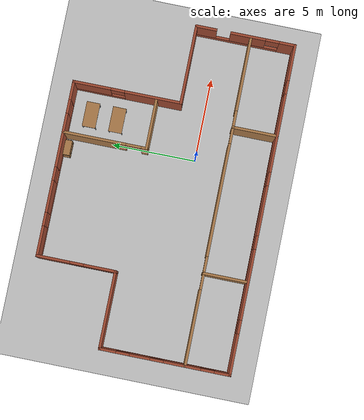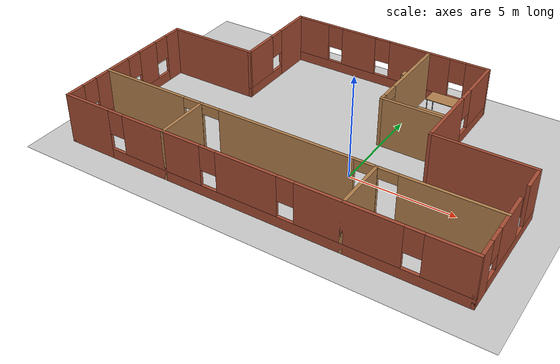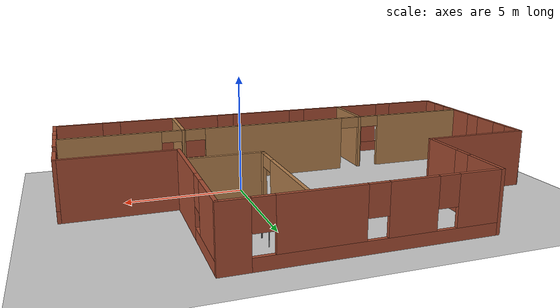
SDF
<sdf version="1.7">
 <world name="default">
  <model name="ground_plane">
   <static>1</static>
   <link name="link">
    <collision name="collision">
     <geometry><plane><normal>0 0 1</normal><size>100 100</size></plane></geometry>
     <surface>
      <contact><collide_bitmask>65535</collide_bitmask></contact>
      <friction><ode><mu>100</mu><mu2>50</mu2></ode></friction>
     </surface>
    </collision>
    <visual name="visual">
     <cast_shadows>0</cast_shadows>
     <geometry><plane><normal>0 0 1</normal><size>100 100</size></plane></geometry>
     <material>
      <script><uri>file://media/materials/scripts/gazebo.material</uri><name>Gazebo/Grey</name></script>
     </material>
    </visual>
   </link>
  </model>
  <model name="building">
   <pose>-2.195 1.715 0 0 -0 0</pose>
   <link name="Wall_10">
    <pose>-5.2249 3.79999 0 0 -0 -1.57084</pose>
    <visual name="Wall_10_Visual_0">
     <pose>-1.37612 0 1.25 0 -0 0</pose>
     <geometry><box><size>1.99776 0.15 2.5</size></box></geometry>
     <material>
      <script><uri>file://media/materials/scripts/gazebo.material</uri><name>Gazebo/Bricks</name></script>
      <ambient>1 1 1 1</ambient>
     </material>
     <meta><layer>0</layer></meta>
    </visual>
    <collision name="Wall_10_Collision_0">
     <geometry><box><size>1.99776 0.15 2.5</size></box></geometry>
     <pose>-1.37612 0 1.25 0 -0 0</pose>
    </collision>
    <visual name="Wall_10_Visual_1">
     <pose>0.998879 0 0.25 0 -0 0</pose>
     <geometry><box><size>2.75224 0.15 0.5</size></box></geometry>
     <material>
      <script><uri>file://media/materials/scripts/gazebo.material</uri><name>Gazebo/Bricks</name></script>
      <ambient>1 1 1 1</ambient>
     </material>
     <meta><layer>0</layer></meta>
    </visual>
    <collision name="Wall_10_Collision_1">
     <geometry><box><size>2.75224 0.15 0.5</size></box></geometry>
     <pose>0.998879 0 0.25 0 -0 0</pose>
    </collision>
    <visual name="Wall_10_Visual_2">
     <pose>1.39888 0 1.5 0 -0 0</pose>
     <geometry><box><size>1.95224 0.15 2</size></box></geometry>
     <material>
      <script><uri>file://media/materials/scripts/gazebo.material</uri><name>Gazebo/Bricks</name></script>
      <ambient>1 1 1 1</ambient>
     </material>
     <meta><layer>0</layer></meta>
    </visual>
    <collision name="Wall_10_Collision_2">
     <geometry><box><size>1.95224 0.15 2</size></box></geometry>
     <pose>1.39888 0 1.5 0 -0 0</pose>
    </collision>
    <visual name="Wall_10_Visual_3">
     <pose>0.022759 0 1.9 0 -0 0</pose>
     <geometry><box><size>0.8 0.15 1.2</size></box></geometry>
     <material>
      <script><uri>file://media/materials/scripts/gazebo.material</uri><name>Gazebo/Bricks</name></script>
      <ambient>1 1 1 1</ambient>
     </material>
     <meta><layer>0</layer></meta>
    </visual>
    <collision name="Wall_10_Collision_3">
     <geometry><box><size>0.8 0.15 1.2</size></box></geometry>
     <pose>0.022759 0 1.9 0 -0 0</pose>
    </collision>
   </link>
   <link name="Wall_11">
    <collision name="Wall_11_Collision">
     <geometry><box><size>4.65 0.15 2.5</size></box></geometry>
     <pose>0 0 1.25 0 -0 0</pose>
    </collision>
    <visual name="Wall_11_Visual">
     <pose>0 0 1.25 0 -0 0</pose>
     <geometry><box><size>4.65 0.15 2.5</size></box></geometry>
     <material>
      <script><uri>file://media/materials/scripts/gazebo.material</uri><name>Gazebo/Bricks</name></script>
      <ambient>1 1 1 1</ambient>
     </material>
     <meta><layer>0</layer></meta>
    </visual>
    <pose>-7.475 1.5 0 0 -0 3.14159</pose>
   </link>
   <link name="Wall_14">
    <pose>-9.725 -2.3 0 0 -0 -1.5708</pose>
    <visual name="Wall_14_Visual_0">
     <pose>-3.36591 0 1.25 0 -0 0</pose>
     <geometry><box><size>1.01819 0.15 2.5</size></box></geometry>
     <material>
      <script><uri>file://media/materials/scripts/gazebo.material</uri><name>Gazebo/Bricks</name></script>
      <ambient>1 1 1 1</ambient>
     </material>
     <meta><layer>0</layer></meta>
    </visual>
    <collision name="Wall_14_Collision_0">
     <geometry><box><size>1.01819 0.15 2.5</size></box></geometry>
     <pose>-3.36591 0 1.25 0 -0 0</pose>
    </collision>
    <visual name="Wall_14_Visual_1">
     <pose>0.509094 0 0.25 0 -0 0</pose>
     <geometry><box><size>6.73181 0.15 0.5</size></box></geometry>
     <material>
      <script><uri>file://media/materials/scripts/gazebo.material</uri><name>Gazebo/Bricks</name></script>
      <ambient>1 1 1 1</ambient>
     </material>
     <meta><layer>0</layer></meta>
    </visual>
    <collision name="Wall_14_Collision_1">
     <geometry><box><size>6.73181 0.15 0.5</size></box></geometry>
     <pose>0.509094 0 0.25 0 -0 0</pose>
    </collision>
    <visual name="Wall_14_Visual_2">
     <pose>-1.46334 0 1.5 0 -0 0</pose>
     <geometry><box><size>1.18694 0.15 2</size></box></geometry>
     <material>
      <script><uri>file://media/materials/scripts/gazebo.material</uri><name>Gazebo/Bricks</name></script>
      <ambient>1 1 1 1</ambient>
     </material>
     <meta><layer>0</layer></meta>
    </visual>
    <collision name="Wall_14_Collision_2">
     <geometry><box><size>1.18694 0.15 2</size></box></geometry>
     <pose>-1.46334 0 1.5 0 -0 0</pose>
    </collision>
    <visual name="Wall_14_Visual_3">
     <pose>1.01247 0 1.5 0 -0 0</pose>
     <geometry><box><size>2.16467 0.15 2</size></box></geometry>
     <material>
      <script><uri>file://media/materials/scripts/gazebo.material</uri><name>Gazebo/Bricks</name></script>
      <ambient>1 1 1 1</ambient>
     </material>
     <meta><layer>0</layer></meta>
    </visual>
    <collision name="Wall_14_Collision_3">
     <geometry><box><size>2.16467 0.15 2</size></box></geometry>
     <pose>1.01247 0 1.5 0 -0 0</pose>
    </collision>
    <visual name="Wall_14_Visual_4">
     <pose>3.3849 0 1.5 0 -0 0</pose>
     <geometry><box><size>0.980194 0.15 2</size></box></geometry>
     <material>
      <script><uri>file://media/materials/scripts/gazebo.material</uri><name>Gazebo/Bricks</name></script>
      <ambient>1 1 1 1</ambient>
     </material>
     <meta><layer>0</layer></meta>
    </visual>
    <collision name="Wall_14_Collision_4">
     <geometry><box><size>0.980194 0.15 2</size></box></geometry>
     <pose>3.3849 0 1.5 0 -0 0</pose>
    </collision>
    <visual name="Wall_14_Visual_5">
     <pose>-2.45681 0 1.9 0 -0 0</pose>
     <geometry><box><size>0.8 0.15 1.2</size></box></geometry>
     <material>
      <script><uri>file://media/materials/scripts/gazebo.material</uri><name>Gazebo/Bricks</name></script>
      <ambient>1 1 1 1</ambient>
     </material>
     <meta><layer>0</layer></meta>
    </visual>
    <collision name="Wall_14_Collision_5">
     <geometry><box><size>0.8 0.15 1.2</size></box></geometry>
     <pose>-2.45681 0 1.9 0 -0 0</pose>
    </collision>
    <visual name="Wall_14_Visual_6">
     <pose>-0.469869 0 1.9 0 -0 0</pose>
     <geometry><box><size>0.8 0.15 1.2</size></box></geometry>
     <material>
      <script><uri>file://media/materials/scripts/gazebo.material</uri><name>Gazebo/Bricks</name></script>
      <ambient>1 1 1 1</ambient>
     </material>
     <meta><layer>0</layer></meta>
    </visual>
    <collision name="Wall_14_Collision_6">
     <geometry><box><size>0.8 0.15 1.2</size></box></geometry>
     <pose>-0.469869 0 1.9 0 -0 0</pose>
    </collision>
    <visual name="Wall_14_Visual_7">
     <pose>2.49481 0 1.9 0 -0 0</pose>
     <geometry><box><size>0.8 0.15 1.2</size></box></geometry>
     <material>
      <script><uri>file://media/materials/scripts/gazebo.material</uri><name>Gazebo/Bricks</name></script>
      <ambient>1 1 1 1</ambient>
     </material>
     <meta><layer>0</layer></meta>
    </visual>
    <collision name="Wall_14_Collision_7">
     <geometry><box><size>0.8 0.15 1.2</size></box></geometry>
     <pose>2.49481 0 1.9 0 -0 0</pose>
    </collision>
   </link>
   <link name="Wall_17">
    <pose>-0 -6.1 0 0 -0 0</pose>
    <visual name="Wall_17_Visual_0">
     <pose>-8.55799 0 1.25 0 -0 0</pose>
     <geometry><box><size>2.48423 0.15 2.5</size></box></geometry>
     <material>
      <script><uri>file://media/materials/scripts/gazebo.material</uri><name>Gazebo/Bricks</name></script>
      <ambient>1 1 1 1</ambient>
     </material>
     <meta><layer>0</layer></meta>
    </visual>
    <collision name="Wall_17_Collision_0">
     <geometry><box><size>2.48423 0.15 2.5</size></box></geometry>
     <pose>-8.55799 0 1.25 0 -0 0</pose>
    </collision>
    <visual name="Wall_17_Visual_1">
     <pose>1.24211 0 0.25 0 -0 0</pose>
     <geometry><box><size>17.116 0.15 0.5</size></box></geometry>
     <material>
      <script><uri>file://media/materials/scripts/gazebo.material</uri><name>Gazebo/Bricks</name></script>
      <ambient>1 1 1 1</ambient>
     </material>
     <meta><layer>0</layer></meta>
    </visual>
    <collision name="Wall_17_Collision_1">
     <geometry><box><size>17.116 0.15 0.5</size></box></geometry>
     <pose>1.24211 0 0.25 0 -0 0</pose>
    </collision>
    <visual name="Wall_17_Visual_2">
     <pose>-4.44756 0 1.5 0 -0 0</pose>
     <geometry><box><size>4.13663 0.15 2</size></box></geometry>
     <material>
      <script><uri>file://media/materials/scripts/gazebo.material</uri><name>Gazebo/Bricks</name></script>
      <ambient>1 1 1 1</ambient>
     </material>
     <meta><layer>0</layer></meta>
    </visual>
    <collision name="Wall_17_Collision_2">
     <geometry><box><size>4.13663 0.15 2</size></box></geometry>
     <pose>-4.44756 0 1.5 0 -0 0</pose>
    </collision>
    <visual name="Wall_17_Visual_3">
     <pose>-0.102295 0 1.5 0 -0 0</pose>
     <geometry><box><size>2.9539 0.15 2</size></box></geometry>
     <material>
      <script><uri>file://media/materials/scripts/gazebo.material</uri><name>Gazebo/Bricks</name></script>
      <ambient>1 1 1 1</ambient>
     </material>
     <meta><layer>0</layer></meta>
    </visual>
    <collision name="Wall_17_Collision_3">
     <geometry><box><size>2.9539 0.15 2</size></box></geometry>
     <pose>-0.102295 0 1.5 0 -0 0</pose>
    </collision>
    <visual name="Wall_17_Visual_4">
     <pose>4.50009 0 1.5 0 -0 0</pose>
     <geometry><box><size>4.65087 0.15 2</size></box></geometry>
     <material>
      <script><uri>file://media/materials/scripts/gazebo.material</uri><name>Gazebo/Bricks</name></script>
      <ambient>1 1 1 1</ambient>
     </material>
     <meta><layer>0</layer></meta>
    </visual>
    <collision name="Wall_17_Collision_4">
     <geometry><box><size>4.65087 0.15 2</size></box></geometry>
     <pose>4.50009 0 1.5 0 -0 0</pose>
    </collision>
    <visual name="Wall_17_Visual_5">
     <pose>8.71281 0 1.5 0 -0 0</pose>
     <geometry><box><size>2.17458 0.15 2</size></box></geometry>
     <material>
      <script><uri>file://media/materials/scripts/gazebo.material</uri><name>Gazebo/Bricks</name></script>
      <ambient>1 1 1 1</ambient>
     </material>
     <meta><layer>0</layer></meta>
    </visual>
    <collision name="Wall_17_Collision_5">
     <geometry><box><size>2.17458 0.15 2</size></box></geometry>
     <pose>8.71281 0 1.5 0 -0 0</pose>
    </collision>
    <visual name="Wall_17_Visual_6">
     <pose>-6.91588 0 1.9 0 -0 0</pose>
     <geometry><box><size>0.8 0.15 1.2</size></box></geometry>
     <material>
      <script><uri>file://media/materials/scripts/gazebo.material</uri><name>Gazebo/Bricks</name></script>
      <ambient>1 1 1 1</ambient>
     </material>
     <meta><layer>0</layer></meta>
    </visual>
    <collision name="Wall_17_Collision_6">
     <geometry><box><size>0.8 0.15 1.2</size></box></geometry>
     <pose>-6.91588 0 1.9 0 -0 0</pose>
    </collision>
    <visual name="Wall_17_Visual_7">
     <pose>-1.97924 0 1.9 0 -0 0</pose>
     <geometry><box><size>0.8 0.15 1.2</size></box></geometry>
     <material>
      <script><uri>file://media/materials/scripts/gazebo.material</uri><name>Gazebo/Bricks</name></script>
      <ambient>1 1 1 1</ambient>
     </material>
     <meta><layer>0</layer></meta>
    </visual>
    <collision name="Wall_17_Collision_7">
     <geometry><box><size>0.8 0.15 1.2</size></box></geometry>
     <pose>-1.97924 0 1.9 0 -0 0</pose>
    </collision>
    <visual name="Wall_17_Visual_8">
     <pose>1.77465 0 1.9 0 -0 0</pose>
     <geometry><box><size>0.8 0.15 1.2</size></box></geometry>
     <material>
      <script><uri>file://media/materials/scripts/gazebo.material</uri><name>Gazebo/Bricks</name></script>
      <ambient>1 1 1 1</ambient>
     </material>
     <meta><layer>0</layer></meta>
    </visual>
    <collision name="Wall_17_Collision_8">
     <geometry><box><size>0.8 0.15 1.2</size></box></geometry>
     <pose>1.77465 0 1.9 0 -0 0</pose>
    </collision>
    <visual name="Wall_17_Visual_9">
     <pose>7.22552 0 1.9 0 -0 0</pose>
     <geometry><box><size>0.8 0.15 1.2</size></box></geometry>
     <material>
      <script><uri>file://media/materials/scripts/gazebo.material</uri><name>Gazebo/Bricks</name></script>
      <ambient>1 1 1 1</ambient>
     </material>
     <meta><layer>0</layer></meta>
    </visual>
    <collision name="Wall_17_Collision_9">
     <geometry><box><size>0.8 0.15 1.2</size></box></geometry>
     <pose>7.22552 0 1.9 0 -0 0</pose>
    </collision>
   </link>
   <link name="Wall_19">
    <pose>-0 -3.495 0 0 -0 0</pose>
    <visual name="Wall_19_Visual_0">
     <pose>-7.52876 0 1.25 0 -0 0</pose>
     <geometry><box><size>4.54248 0.15 2.5</size></box></geometry>
     <material>
      <script><uri>file://media/materials/scripts/gazebo.material</uri><name>Gazebo/Wood</name></script>
      <ambient>0 1 0 1</ambient>
     </material>
     <meta><layer>0</layer></meta>
    </visual>
    <collision name="Wall_19_Collision_0">
     <geometry><box><size>4.54248 0.15 2.5</size></box></geometry>
     <pose>-7.52876 0 1.25 0 -0 0</pose>
    </collision>
    <visual name="Wall_19_Visual_1">
     <pose>-4.29329 0 1.25 0 -0 0</pose>
     <geometry><box><size>0.128465 0.15 2.5</size></box></geometry>
     <material>
      <script><uri>file://media/materials/scripts/gazebo.material</uri><name>Gazebo/Wood</name></script>
      <ambient>0 1 0 1</ambient>
     </material>
     <meta><layer>0</layer></meta>
    </visual>
    <collision name="Wall_19_Collision_1">
     <geometry><box><size>0.128465 0.15 2.5</size></box></geometry>
     <pose>-4.29329 0 1.25 0 -0 0</pose>
    </collision>
    <visual name="Wall_19_Visual_2">
     <pose>0.007716 0 1.25 0 -0 0</pose>
     <geometry><box><size>6.67355 0.15 2.5</size></box></geometry>
     <material>
      <script><uri>file://media/materials/scripts/gazebo.material</uri><name>Gazebo/Wood</name></script>
      <ambient>0 1 0 1</ambient>
     </material>
     <meta><layer>0</layer></meta>
    </visual>
    <collision name="Wall_19_Collision_2">
     <geometry><box><size>6.67355 0.15 2.5</size></box></geometry>
     <pose>0.007716 0 1.25 0 -0 0</pose>
    </collision>
    <visual name="Wall_19_Visual_3">
     <pose>4.31981 0 1.25 0 -0 0</pose>
     <geometry><box><size>0.150647 0.15 2.5</size></box></geometry>
     <material>
      <script><uri>file://media/materials/scripts/gazebo.material</uri><name>Gazebo/Wood</name></script>
      <ambient>0 1 0 1</ambient>
     </material>
     <meta><layer>0</layer></meta>
    </visual>
    <collision name="Wall_19_Collision_3">
     <geometry><box><size>0.150647 0.15 2.5</size></box></geometry>
     <pose>4.31981 0 1.25 0 -0 0</pose>
    </collision>
    <visual name="Wall_19_Visual_4">
     <pose>7.54757 0 1.25 0 -0 0</pose>
     <geometry><box><size>4.50486 0.15 2.5</size></box></geometry>
     <material>
      <script><uri>file://media/materials/scripts/gazebo.material</uri><name>Gazebo/Wood</name></script>
      <ambient>0 1 0 1</ambient>
     </material>
     <meta><layer>0</layer></meta>
    </visual>
    <collision name="Wall_19_Collision_4">
     <geometry><box><size>4.50486 0.15 2.5</size></box></geometry>
     <pose>7.54757 0 1.25 0 -0 0</pose>
    </collision>
    <visual name="Wall_19_Visual_5">
     <pose>-4.80752 0 2.25 0 -0 0</pose>
     <geometry><box><size>0.9 0.15 0.5</size></box></geometry>
     <material>
      <script><uri>file://media/materials/scripts/gazebo.material</uri><name>Gazebo/Wood</name></script>
      <ambient>0 1 0 1</ambient>
     </material>
     <meta><layer>0</layer></meta>
    </visual>
    <collision name="Wall_19_Collision_5">
     <geometry><box><size>0.9 0.15 0.5</size></box></geometry>
     <pose>-4.80752 0 2.25 0 -0 0</pose>
    </collision>
    <visual name="Wall_19_Visual_6">
     <pose>-3.77906 0 2.25 0 -0 0</pose>
     <geometry><box><size>0.9 0.15 0.5</size></box></geometry>
     <material>
      <script><uri>file://media/materials/scripts/gazebo.material</uri><name>Gazebo/Wood</name></script>
      <ambient>0 1 0 1</ambient>
     </material>
     <meta><layer>0</layer></meta>
    </visual>
    <collision name="Wall_19_Collision_6">
     <geometry><box><size>0.9 0.15 0.5</size></box></geometry>
     <pose>-3.77906 0 2.25 0 -0 0</pose>
    </collision>
    <visual name="Wall_19_Visual_7">
     <pose>3.79449 0 2.25 0 -0 0</pose>
     <geometry><box><size>0.9 0.15 0.5</size></box></geometry>
     <material>
      <script><uri>file://media/materials/scripts/gazebo.material</uri><name>Gazebo/Wood</name></script>
      <ambient>0 1 0 1</ambient>
     </material>
     <meta><layer>0</layer></meta>
    </visual>
    <collision name="Wall_19_Collision_7">
     <geometry><box><size>0.9 0.15 0.5</size></box></geometry>
     <pose>3.79449 0 2.25 0 -0 0</pose>
    </collision>
    <visual name="Wall_19_Visual_8">
     <pose>4.84514 0 2.25 0 -0 0</pose>
     <geometry><box><size>0.9 0.15 0.5</size></box></geometry>
     <material>
      <script><uri>file://media/materials/scripts/gazebo.material</uri><name>Gazebo/Wood</name></script>
      <ambient>0 1 0 1</ambient>
     </material>
     <meta><layer>0</layer></meta>
    </visual>
    <collision name="Wall_19_Collision_8">
     <geometry><box><size>0.9 0.15 0.5</size></box></geometry>
     <pose>4.84514 0 2.25 0 -0 0</pose>
    </collision>
   </link>
   <link name="Wall_21">
    <collision name="Wall_21_Collision">
     <geometry><box><size>2.755 0.15 2.5</size></box></geometry>
     <pose>0 0 1.25 0 -0 0</pose>
    </collision>
    <visual name="Wall_21_Visual">
     <pose>0 0 1.25 0 -0 0</pose>
     <geometry><box><size>2.755 0.15 2.5</size></box></geometry>
     <material>
      <script><uri>file://media/materials/scripts/gazebo.material</uri><name>Gazebo/Wood</name></script>
      <ambient>1 1 1 1</ambient>
     </material>
     <meta><layer>0</layer></meta>
    </visual>
    <pose>-4.313 -4.7975 0 0 -0 -1.5708</pose>
   </link>
   <link name="Wall_23">
    <collision name="Wall_23_Collision">
     <geometry><box><size>2.755 0.15 2.5</size></box></geometry>
     <pose>0 0 1.25 0 -0 0</pose>
    </collision>
    <visual name="Wall_23_Visual">
     <pose>0 0 1.25 0 -0 0</pose>
     <geometry><box><size>2.755 0.15 2.5</size></box></geometry>
     <material>
      <script><uri>file://media/materials/scripts/gazebo.material</uri><name>Gazebo/Wood</name></script>
      <ambient>1 1 1 1</ambient>
     </material>
     <meta><layer>0</layer></meta>
    </visual>
    <pose>4.313 -4.7975 0 0 -0 -1.5708</pose>
   </link>
   <link name="Wall_27">
    <pose>2.09696 3.60453 0 0 -0 -1.5708</pose>
    <visual name="Wall_27_Visual_0">
     <pose>-0.643715 0 1.25 0 -0 0</pose>
     <geometry><box><size>3.71257 0.15 2.5</size></box></geometry>
     <material>
      <script><uri>file://media/materials/scripts/gazebo.material</uri><name>Gazebo/Wood</name></script>
      <ambient>1 1 1 1</ambient>
     </material>
     <meta><layer>0</layer></meta>
    </visual>
    <collision name="Wall_27_Collision_0">
     <geometry><box><size>3.71257 0.15 2.5</size></box></geometry>
     <pose>-0.643715 0 1.25 0 -0 0</pose>
    </collision>
    <visual name="Wall_27_Visual_1">
     <pose>2.30628 0 1.25 0 -0 0</pose>
     <geometry><box><size>0.38743 0.15 2.5</size></box></geometry>
     <material>
      <script><uri>file://media/materials/scripts/gazebo.material</uri><name>Gazebo/Wood</name></script>
      <ambient>1 1 1 1</ambient>
     </material>
     <meta><layer>0</layer></meta>
    </visual>
    <collision name="Wall_27_Collision_1">
     <geometry><box><size>0.38743 0.15 2.5</size></box></geometry>
     <pose>2.30628 0 1.25 0 -0 0</pose>
    </collision>
    <visual name="Wall_27_Visual_2">
     <pose>1.66257 0 2.25 0 -0 0</pose>
     <geometry><box><size>0.9 0.15 0.5</size></box></geometry>
     <material>
      <script><uri>file://media/materials/scripts/gazebo.material</uri><name>Gazebo/Wood</name></script>
      <ambient>1 1 1 1</ambient>
     </material>
     <meta><layer>0</layer></meta>
    </visual>
    <collision name="Wall_27_Collision_2">
     <geometry><box><size>0.9 0.15 0.5</size></box></geometry>
     <pose>1.66257 0 2.25 0 -0 0</pose>
    </collision>
   </link>
   <link name="Wall_28">
    <collision name="Wall_28_Collision">
     <geometry><box><size>3 0.15 2.5</size></box></geometry>
     <pose>0 0 1.25 0 -0 0</pose>
    </collision>
    <visual name="Wall_28_Visual">
     <pose>0 0 1.25 0 -0 0</pose>
     <geometry><box><size>3 0.15 2.5</size></box></geometry>
     <material>
      <script><uri>file://media/materials/scripts/gazebo.material</uri><name>Gazebo/Wood</name></script>
      <ambient>1 1 1 1</ambient>
     </material>
     <meta><layer>0</layer></meta>
    </visual>
    <pose>3.52196 1.17954 0 0 -0 0</pose>
   </link>
   <link name="Wall_6">
    <pose>9.725 -3.171 0 0 -0 1.5708</pose>
    <visual name="Wall_6_Visual_0">
     <pose>-2.49676 0 1.25 0 -0 0</pose>
     <geometry><box><size>1.01448 0.15 2.5</size></box></geometry>
     <material>
      <script><uri>file://media/materials/scripts/gazebo.material</uri><name>Gazebo/Bricks</name></script>
      <ambient>1 1 1 1</ambient>
     </material>
     <meta><layer>0</layer></meta>
    </visual>
    <collision name="Wall_6_Collision_0">
     <geometry><box><size>1.01448 0.15 2.5</size></box></geometry>
     <pose>-2.49676 0 1.25 0 -0 0</pose>
    </collision>
    <visual name="Wall_6_Visual_1">
     <pose>0.507238 0 0.25 0 -0 0</pose>
     <geometry><box><size>4.99352 0.15 0.5</size></box></geometry>
     <material>
      <script><uri>file://media/materials/scripts/gazebo.material</uri><name>Gazebo/Bricks</name></script>
      <ambient>1 1 1 1</ambient>
     </material>
     <meta><layer>0</layer></meta>
    </visual>
    <collision name="Wall_6_Collision_1">
     <geometry><box><size>4.99352 0.15 0.5</size></box></geometry>
     <pose>0.507238 0 0.25 0 -0 0</pose>
    </collision>
    <visual name="Wall_6_Visual_2">
     <pose>-0.143582 0 1.5 0 -0 0</pose>
     <geometry><box><size>2.09188 0.15 2</size></box></geometry>
     <material>
      <script><uri>file://media/materials/scripts/gazebo.material</uri><name>Gazebo/Bricks</name></script>
      <ambient>1 1 1 1</ambient>
     </material>
     <meta><layer>0</layer></meta>
    </visual>
    <collision name="Wall_6_Collision_2">
     <geometry><box><size>2.09188 0.15 2</size></box></geometry>
     <pose>-0.143582 0 1.5 0 -0 0</pose>
    </collision>
    <visual name="Wall_6_Visual_3">
     <pose>2.35318 0 1.5 0 -0 0</pose>
     <geometry><box><size>1.30164 0.15 2</size></box></geometry>
     <material>
      <script><uri>file://media/materials/scripts/gazebo.material</uri><name>Gazebo/Bricks</name></script>
      <ambient>1 1 1 1</ambient>
     </material>
     <meta><layer>0</layer></meta>
    </visual>
    <collision name="Wall_6_Collision_3">
     <geometry><box><size>1.30164 0.15 2</size></box></geometry>
     <pose>2.35318 0 1.5 0 -0 0</pose>
    </collision>
    <visual name="Wall_6_Visual_4">
     <pose>-1.58952 0 1.9 0 -0 0</pose>
     <geometry><box><size>0.8 0.15 1.2</size></box></geometry>
     <material>
      <script><uri>file://media/materials/scripts/gazebo.material</uri><name>Gazebo/Bricks</name></script>
      <ambient>1 1 1 1</ambient>
     </material>
     <meta><layer>0</layer></meta>
    </visual>
    <collision name="Wall_6_Collision_4">
     <geometry><box><size>0.8 0.15 1.2</size></box></geometry>
     <pose>-1.58952 0 1.9 0 -0 0</pose>
    </collision>
    <visual name="Wall_6_Visual_5">
     <pose>0.902359 0 1.9 0 -0 0</pose>
     <geometry><box><size>0 0.15 1.2</size></box></geometry>
     <material>
      <script><uri>file://media/materials/scripts/gazebo.material</uri><name>Gazebo/Bricks</name></script>
      <ambient>1 1 1 1</ambient>
     </material>
     <meta><layer>0</layer></meta>
    </visual>
    <collision name="Wall_6_Collision_5">
     <geometry><box><size>0 0.15 1.2</size></box></geometry>
     <pose>0.902359 0 1.9 0 -0 0</pose>
    </collision>
   </link>
   <link name="Wall_7">
    <collision name="Wall_7_Collision">
     <geometry><box><size>4.77281 0.15 2.5</size></box></geometry>
     <pose>0 0 1.25 0 -0 0</pose>
    </collision>
    <visual name="Wall_7_Visual">
     <pose>0 0 1.25 0 -0 0</pose>
     <geometry><box><size>4.77281 0.15 2.5</size></box></geometry>
     <material>
      <script><uri>file://media/materials/scripts/gazebo.material</uri><name>Gazebo/Bricks</name></script>
      <ambient>1 1 1 1</ambient>
     </material>
     <meta><layer>0</layer></meta>
    </visual>
    <pose>7.4135 -0.242 0 0 -0 3.14159</pose>
   </link>
   <link name="Wall_8">
    <pose>5.102 2.929 0 0 -0 1.5708</pose>
    <visual name="Wall_8_Visual_0">
     <pose>-1.54193 0 1.25 0 -0 0</pose>
     <geometry><box><size>3.40815 0.15 2.5</size></box></geometry>
     <material>
      <script><uri>file://media/materials/scripts/gazebo.material</uri><name>Gazebo/Bricks</name></script>
      <ambient>1 1 1 1</ambient>
     </material>
     <meta><layer>0</layer></meta>
    </visual>
    <collision name="Wall_8_Collision_0">
     <geometry><box><size>3.40815 0.15 2.5</size></box></geometry>
     <pose>-1.54193 0 1.25 0 -0 0</pose>
    </collision>
    <visual name="Wall_8_Visual_1">
     <pose>1.70407 0 0.25 0 -0 0</pose>
     <geometry><box><size>3.08385 0.15 0.5</size></box></geometry>
     <material>
      <script><uri>file://media/materials/scripts/gazebo.material</uri><name>Gazebo/Bricks</name></script>
      <ambient>1 1 1 1</ambient>
     </material>
     <meta><layer>0</layer></meta>
    </visual>
    <collision name="Wall_8_Collision_1">
     <geometry><box><size>3.08385 0.15 0.5</size></box></geometry>
     <pose>1.70407 0 0.25 0 -0 0</pose>
    </collision>
    <visual name="Wall_8_Visual_2">
     <pose>2.10407 0 1.5 0 -0 0</pose>
     <geometry><box><size>2.28385 0.15 2</size></box></geometry>
     <material>
      <script><uri>file://media/materials/scripts/gazebo.material</uri><name>Gazebo/Bricks</name></script>
      <ambient>1 1 1 1</ambient>
     </material>
     <meta><layer>0</layer></meta>
    </visual>
    <collision name="Wall_8_Collision_2">
     <geometry><box><size>2.28385 0.15 2</size></box></geometry>
     <pose>2.10407 0 1.5 0 -0 0</pose>
    </collision>
    <visual name="Wall_8_Visual_3">
     <pose>0.562146 0 1.9 0 -0 0</pose>
     <geometry><box><size>0.8 0.15 1.2</size></box></geometry>
     <material>
      <script><uri>file://media/materials/scripts/gazebo.material</uri><name>Gazebo/Bricks</name></script>
      <ambient>1 1 1 1</ambient>
     </material>
     <meta><layer>0</layer></meta>
    </visual>
    <collision name="Wall_8_Collision_3">
     <geometry><box><size>0.8 0.15 1.2</size></box></geometry>
     <pose>0.562146 0 1.9 0 -0 0</pose>
    </collision>
   </link>
   <link name="Wall_9">
    <pose>-0.061396 6.09999 0 0 -0 -3.14159</pose>
    <visual name="Wall_9_Visual_0">
     <pose>-4.65242 0 1.25 0 -0 0</pose>
     <geometry><box><size>1.17196 0.15 2.5</size></box></geometry>
     <material>
      <script><uri>file://media/materials/scripts/gazebo.material</uri><name>Gazebo/Bricks</name></script>
      <ambient>1 1 1 1</ambient>
     </material>
     <meta><layer>0</layer></meta>
    </visual>
    <collision name="Wall_9_Collision_0">
     <geometry><box><size>1.17196 0.15 2.5</size></box></geometry>
     <pose>-4.65242 0 1.25 0 -0 0</pose>
    </collision>
    <visual name="Wall_9_Visual_1">
     <pose>0.58598 0 0.25 0 -0 0</pose>
     <geometry><box><size>9.30483 0.15 0.5</size></box></geometry>
     <material>
      <script><uri>file://media/materials/scripts/gazebo.material</uri><name>Gazebo/Bricks</name></script>
      <ambient>1 1 1 1</ambient>
     </material>
     <meta><layer>0</layer></meta>
    </visual>
    <collision name="Wall_9_Collision_1">
     <geometry><box><size>9.30483 0.15 0.5</size></box></geometry>
     <pose>0.58598 0 0.25 0 -0 0</pose>
    </collision>
    <visual name="Wall_9_Visual_2">
     <pose>-1.66935 0 1.5 0 -0 0</pose>
     <geometry><box><size>3.19417 0.15 2</size></box></geometry>
     <material>
      <script><uri>file://media/materials/scripts/gazebo.material</uri><name>Gazebo/Bricks</name></script>
      <ambient>1 1 1 1</ambient>
     </material>
     <meta><layer>0</layer></meta>
    </visual>
    <collision name="Wall_9_Collision_2">
     <geometry><box><size>3.19417 0.15 2</size></box></geometry>
     <pose>-1.66935 0 1.5 0 -0 0</pose>
    </collision>
    <visual name="Wall_9_Visual_3">
     <pose>1.66831 0 1.5 0 -0 0</pose>
     <geometry><box><size>1.88115 0.15 2</size></box></geometry>
     <material>
      <script><uri>file://media/materials/scripts/gazebo.material</uri><name>Gazebo/Bricks</name></script>
      <ambient>1 1 1 1</ambient>
     </material>
     <meta><layer>0</layer></meta>
    </visual>
    <collision name="Wall_9_Collision_3">
     <geometry><box><size>1.88115 0.15 2</size></box></geometry>
     <pose>1.66831 0 1.5 0 -0 0</pose>
    </collision>
    <visual name="Wall_9_Visual_4">
     <pose>4.32364 0 1.5 0 -0 0</pose>
     <geometry><box><size>1.82951 0.15 2</size></box></geometry>
     <material>
      <script><uri>file://media/materials/scripts/gazebo.material</uri><name>Gazebo/Bricks</name></script>
      <ambient>1 1 1 1</ambient>
     </material>
     <meta><layer>0</layer></meta>
    </visual>
    <collision name="Wall_9_Collision_4">
     <geometry><box><size>1.82951 0.15 2</size></box></geometry>
     <pose>4.32364 0 1.5 0 -0 0</pose>
    </collision>
    <visual name="Wall_9_Visual_5">
     <pose>-3.66644 0 1.9 0 -0 0</pose>
     <geometry><box><size>0.8 0.15 1.2</size></box></geometry>
     <material>
      <script><uri>file://media/materials/scripts/gazebo.material</uri><name>Gazebo/Bricks</name></script>
      <ambient>1 1 1 1</ambient>
     </material>
     <meta><layer>0</layer></meta>
    </visual>
    <collision name="Wall_9_Collision_5">
     <geometry><box><size>0.8 0.15 1.2</size></box></geometry>
     <pose>-3.66644 0 1.9 0 -0 0</pose>
    </collision>
    <visual name="Wall_9_Visual_6">
     <pose>0.327732 0 1.9 0 -0 0</pose>
     <geometry><box><size>0.8 0.15 1.2</size></box></geometry>
     <material>
      <script><uri>file://media/materials/scripts/gazebo.material</uri><name>Gazebo/Bricks</name></script>
      <ambient>1 1 1 1</ambient>
     </material>
     <meta><layer>0</layer></meta>
    </visual>
    <collision name="Wall_9_Collision_6">
     <geometry><box><size>0.8 0.15 1.2</size></box></geometry>
     <pose>0.327732 0 1.9 0 -0 0</pose>
    </collision>
    <visual name="Wall_9_Visual_7">
     <pose>3.00888 0 1.9 0 -0 0</pose>
     <geometry><box><size>0.8 0.15 1.2</size></box></geometry>
     <material>
      <script><uri>file://media/materials/scripts/gazebo.material</uri><name>Gazebo/Bricks</name></script>
      <ambient>1 1 1 1</ambient>
     </material>
     <meta><layer>0</layer></meta>
    </visual>
    <collision name="Wall_9_Collision_7">
     <geometry><box><size>0.8 0.15 1.2</size></box></geometry>
     <pose>3.00888 0 1.9 0 -0 0</pose>
    </collision>
   </link>
   <static>1</static>
  </model>
  <model name="bookshelf">
   <static>1</static>
   <link name="link">
    <inertial><mass>1</mass></inertial>
    <collision name="back">
     <pose>0 0.005 0.6 0 -0 0</pose>
     <geometry><box><size>0.9 0.01 1.2</size></box></geometry>
    </collision>
    <visual name="visual1">
     <pose>0 0.005 0.6 0 -0 0</pose>
     <geometry><box><size>0.9 0.01 1.2</size></box></geometry>
     <material>
      <script><uri>file://media/materials/scripts/gazebo.material</uri><name>Gazebo/Wood</name></script>
     </material>
    </visual>
    <collision name="left_side">
     <pose>0.45 -0.195 0.6 0 -0 0</pose>
     <geometry><box><size>0.02 0.4 1.2</size></box></geometry>
    </collision>
    <visual name="visual2">
     <pose>0.45 -0.195 0.6 0 -0 0</pose>
     <geometry><box><size>0.02 0.4 1.2</size></box></geometry>
     <material>
      <script><uri>file://media/materials/scripts/gazebo.material</uri><name>Gazebo/Wood</name></script>
     </material>
    </visual>
    <collision name="right_side">
     <pose>-0.45 -0.195 0.6 0 -0 0</pose>
     <geometry><box><size>0.02 0.4 1.2</size></box></geometry>
    </collision>
    <visual name="visual3">
     <pose>-0.45 -0.195 0.6 0 -0 0</pose>
     <geometry><box><size>0.02 0.4 1.2</size></box></geometry>
     <material>
      <script><uri>file://media/materials/scripts/gazebo.material</uri><name>Gazebo/Wood</name></script>
     </material>
    </visual>
    <collision name="bottom">
     <pose>0 -0.195 0.03 0 -0 0</pose>
     <geometry><box><size>0.88 0.4 0.06</size></box></geometry>
    </collision>
    <visual name="visual4">
     <pose>0 -0.195 0.03 0 -0 0</pose>
     <geometry><box><size>0.88 0.4 0.06</size></box></geometry>
     <material>
      <script><uri>file://media/materials/scripts/gazebo.material</uri><name>Gazebo/Wood</name></script>
     </material>
    </visual>
    <collision name="top">
     <pose>0 -0.195 1.19 0 -0 0</pose>
     <geometry><box><size>0.88 0.4 0.02</size></box></geometry>
    </collision>
    <visual name="visual5">
     <pose>0 -0.195 1.19 0 -0 0</pose>
     <geometry><box><size>0.88 0.4 0.02</size></box></geometry>
     <material>
      <script><uri>file://media/materials/scripts/gazebo.material</uri><name>Gazebo/Wood</name></script>
     </material>
    </visual>
    <collision name="low_shelf">
     <pose>0 -0.195 0.43 0 -0 0</pose>
     <geometry><box><size>0.88 0.4 0.02</size></box></geometry>
    </collision>
    <visual name="visual6">
     <pose>0 -0.195 0.43 0 -0 0</pose>
     <geometry><box><size>0.88 0.4 0.02</size></box></geometry>
     <material>
      <script><uri>file://media/materials/scripts/gazebo.material</uri><name>Gazebo/Wood</name></script>
     </material>
    </visual>
    <collision name="high_shelf">
     <pose>0 -0.195 0.8 0 -0 0</pose>
     <geometry><box><size>0.88 0.4 0.02</size></box></geometry>
    </collision>
    <visual name="visual7">
     <pose>0 -0.195 0.8 0 -0 0</pose>
     <geometry><box><size>0.88 0.4 0.02</size></box></geometry>
     <material>
      <script><uri>file://media/materials/scripts/gazebo.material</uri><name>Gazebo/Wood</name></script>
     </material>
    </visual>
   </link>
   <pose>-0.814397 7.70133 0 0 -0 0</pose>
  </model>
  <model name="table">
   <static>1</static>
   <link name="link">
    <collision name="surface">
     <pose>0 0 1 0 -0 0</pose>
     <geometry><box><size>1.5 0.8 0.03</size></box></geometry>
     <surface><friction><ode><mu>0.6</mu><mu2>0.6</mu2></ode></friction></surface>
    </collision>
    <visual name="visual1">
     <pose>0 0 1 0 -0 0</pose>
     <geometry><box><size>1.5 0.8 0.03</size></box></geometry>
     <material>
      <script><uri>file://media/materials/scripts/gazebo.material</uri><name>Gazebo/Wood</name></script>
     </material>
    </visual>
    <collision name="front_left_leg">
     <pose>0.68 0.38 0.5 0 -0 0</pose>
     <geometry><cylinder><radius>0.02</radius><length>1</length></cylinder></geometry>
    </collision>
    <visual name="front_left_leg">
     <pose>0.68 0.38 0.5 0 -0 0</pose>
     <geometry><cylinder><radius>0.02</radius><length>1</length></cylinder></geometry>
     <material>
      <script><uri>file://media/materials/scripts/gazebo.material</uri><name>Gazebo/Grey</name></script>
     </material>
    </visual>
    <collision name="front_right_leg">
     <pose>0.68 -0.38 0.5 0 -0 0</pose>
     <geometry><cylinder><radius>0.02</radius><length>1</length></cylinder></geometry>
    </collision>
    <visual name="front_right_leg">
     <pose>0.68 -0.38 0.5 0 -0 0</pose>
     <geometry><cylinder><radius>0.02</radius><length>1</length></cylinder></geometry>
     <material>
      <script><uri>file://media/materials/scripts/gazebo.material</uri><name>Gazebo/Grey</name></script>
     </material>
    </visual>
    <collision name="back_right_leg">
     <pose>-0.68 -0.38 0.5 0 -0 0</pose>
     <geometry><cylinder><radius>0.02</radius><length>1</length></cylinder></geometry>
    </collision>
    <visual name="back_right_leg">
     <pose>-0.68 -0.38 0.5 0 -0 0</pose>
     <geometry><cylinder><radius>0.02</radius><length>1</length></cylinder></geometry>
     <material>
      <script><uri>file://media/materials/scripts/gazebo.material</uri><name>Gazebo/Grey</name></script>
     </material>
    </visual>
    <collision name="back_left_leg">
     <pose>-0.68 0.38 0.5 0 -0 0</pose>
     <geometry><cylinder><radius>0.02</radius><length>1</length></cylinder></geometry>
    </collision>
    <visual name="back_left_leg">
     <pose>-0.68 0.38 0.5 0 -0 0</pose>
     <geometry><cylinder><radius>0.02</radius><length>1</length></cylinder></geometry>
     <material>
      <script><uri>file://media/materials/scripts/gazebo.material</uri><name>Gazebo/Grey</name></script>
     </material>
    </visual>
   </link>
   <pose>1.38407 6.5523 0 0 -0 0</pose>
  </model>
  <model name="table_clone">
   <static>1</static>
   <link name="link">
    <collision name="surface">
     <pose>0 0 1 0 -0 0</pose>
     <geometry><box><size>1.5 0.8 0.03</size></box></geometry>
     <surface><friction><ode><mu>0.6</mu><mu2>0.6</mu2></ode></friction></surface>
    </collision>
    <visual name="visual1">
     <pose>0 0 1 0 -0 0</pose>
     <geometry><box><size>1.5 0.8 0.03</size></box></geometry>
     <material>
      <script><uri>file://media/materials/scripts/gazebo.material</uri><name>Gazebo/Wood</name></script>
     </material>
    </visual>
    <collision name="front_left_leg">
     <pose>0.68 0.38 0.5 0 -0 0</pose>
     <geometry><cylinder><radius>0.02</radius><length>1</length></cylinder></geometry>
    </collision>
    <visual name="front_left_leg">
     <pose>0.68 0.38 0.5 0 -0 0</pose>
     <geometry><cylinder><radius>0.02</radius><length>1</length></cylinder></geometry>
     <material>
      <script><uri>file://media/materials/scripts/gazebo.material</uri><name>Gazebo/Grey</name></script>
     </material>
    </visual>
    <collision name="front_right_leg">
     <pose>0.68 -0.38 0.5 0 -0 0</pose>
     <geometry><cylinder><radius>0.02</radius><length>1</length></cylinder></geometry>
    </collision>
    <visual name="front_right_leg">
     <pose>0.68 -0.38 0.5 0 -0 0</pose>
     <geometry><cylinder><radius>0.02</radius><length>1</length></cylinder></geometry>
     <material>
      <script><uri>file://media/materials/scripts/gazebo.material</uri><name>Gazebo/Grey</name></script>
     </material>
    </visual>
    <collision name="back_right_leg">
     <pose>-0.68 -0.38 0.5 0 -0 0</pose>
     <geometry><cylinder><radius>0.02</radius><length>1</length></cylinder></geometry>
    </collision>
    <visual name="back_right_leg">
     <pose>-0.68 -0.38 0.5 0 -0 0</pose>
     <geometry><cylinder><radius>0.02</radius><length>1</length></cylinder></geometry>
     <material>
      <script><uri>file://media/materials/scripts/gazebo.material</uri><name>Gazebo/Grey</name></script>
     </material>
    </visual>
    <collision name="back_left_leg">
     <pose>-0.68 0.38 0.5 0 -0 0</pose>
     <geometry><cylinder><radius>0.02</radius><length>1</length></cylinder></geometry>
    </collision>
    <visual name="back_left_leg">
     <pose>-0.68 0.38 0.5 0 -0 0</pose>
     <geometry><cylinder><radius>0.02</radius><length>1</length></cylinder></geometry>
     <material>
      <script><uri>file://media/materials/scripts/gazebo.material</uri><name>Gazebo/Grey</name></script>
     </material>
    </visual>
   </link>
   <pose>1.38864 4.97023 0 0 -0 0</pose>
  </model>
 </world>
</sdf>
